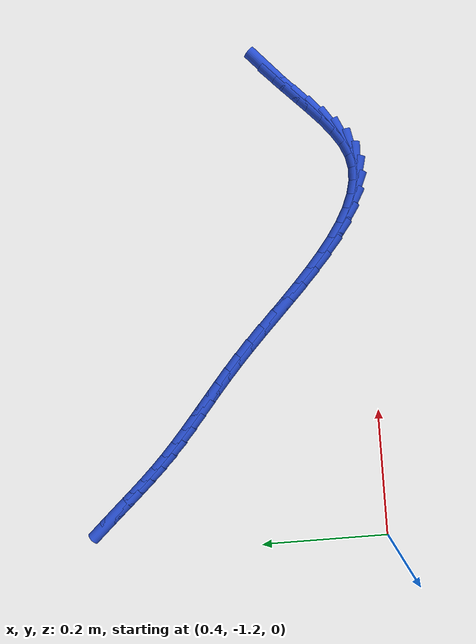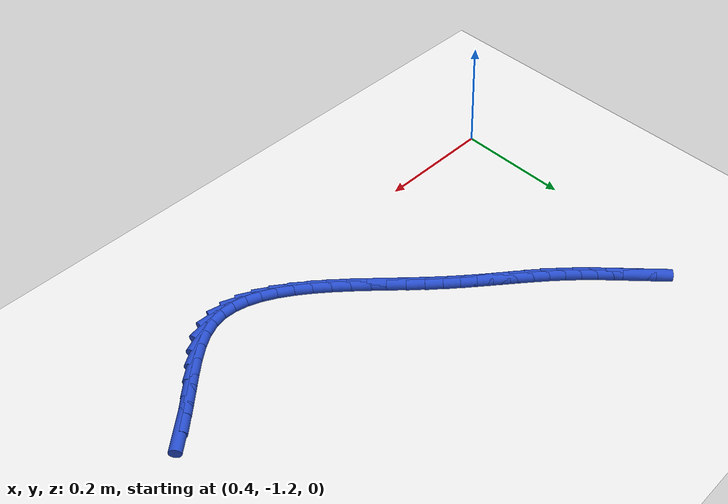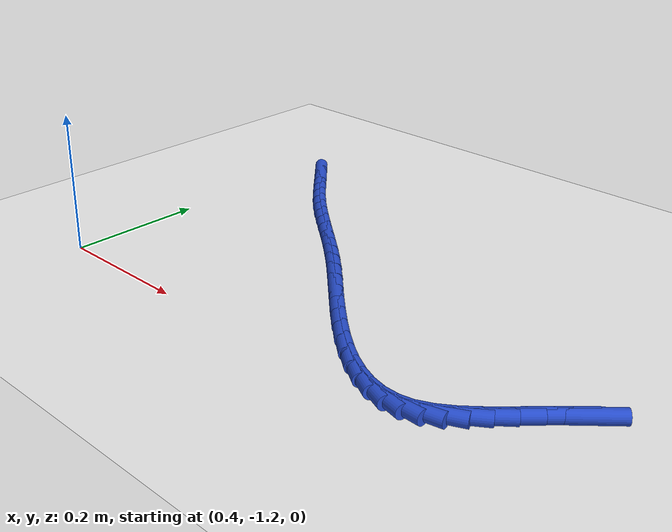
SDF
<sdf version="1.6">
 <world name="default">
  <model name="ground_plane">
   <static>1</static>
   <link name="link">
    <collision name="collision">
     <geometry><plane><normal>0 0 1</normal><size>100 100</size></plane></geometry>
     <surface><friction><ode><mu>100</mu><mu2>50</mu2></ode></friction></surface>
    </collision>
    <visual name="visual">
     <cast_shadows>0</cast_shadows>
     <geometry><plane><normal>0 0 1</normal><size>100 100</size></plane></geometry>
     <material>
      <script><uri>file://media/materials/scripts/gazebo.material</uri><name>Gazebo/WhiteGlow</name></script>
     </material>
    </visual>
   </link>
  </model>
  <model name="line">
   <link name="link_202">
    <pose>1.1506623947052153 -1.064427023692108 0.01 0 1.57 0.7445253968105598</pose>
    <collision name="collision">
     <geometry><cylinder><radius>0.01</radius><length>0.08</length></cylinder></geometry>
    </collision>
    <visual name="visual">
     <material>
      <script><name>Gazebo/Blue</name><uri>file://media/materials/scripts/gazebo.material</uri></script>
     </material>
     <geometry><cylinder><radius>0.01</radius><length>0.08</length></cylinder></geometry>
    </visual>
   </link>
   <link name="link_203">
    <pose>1.128656453459606 -1.0847037906573485 0.01 0 1.57 0.7819613909206391</pose>
    <collision name="collision">
     <geometry><cylinder><radius>0.01</radius><length>0.08</length></cylinder></geometry>
    </collision>
    <visual name="visual">
     <material>
      <script><name>Gazebo/Blue</name><uri>file://media/materials/scripts/gazebo.material</uri></script>
     </material>
     <geometry><cylinder><radius>0.01</radius><length>0.08</length></cylinder></geometry>
    </visual>
   </link>
   <link name="link_204">
    <pose>1.1075437234542118 -1.1056718978303268 0.01 0 1.57 0.789883306645363</pose>
    <collision name="collision">
     <geometry><cylinder><radius>0.01</radius><length>0.08</length></cylinder></geometry>
    </collision>
    <visual name="visual">
     <material>
      <script><name>Gazebo/Blue</name><uri>file://media/materials/scripts/gazebo.material</uri></script>
     </material>
     <geometry><cylinder><radius>0.01</radius><length>0.08</length></cylinder></geometry>
    </visual>
   </link>
   <link name="link_205">
    <pose>1.0870757352523346 -1.1263243181917353 0.01 0 1.57 0.7665611280134716</pose>
    <collision name="collision">
     <geometry><cylinder><radius>0.01</radius><length>0.08</length></cylinder></geometry>
    </collision>
    <visual name="visual">
     <material>
      <script><name>Gazebo/Blue</name><uri>file://media/materials/scripts/gazebo.material</uri></script>
     </material>
     <geometry><cylinder><radius>0.01</radius><length>0.08</length></cylinder></geometry>
    </visual>
   </link>
   <link name="link_206">
    <pose>1.0670039136568994 -1.1456538473499303 0.01 0 1.57 0.7063512324061247</pose>
    <collision name="collision">
     <geometry><cylinder><radius>0.01</radius><length>0.08</length></cylinder></geometry>
    </collision>
    <visual name="visual">
     <material>
      <script><name>Gazebo/Blue</name><uri>file://media/materials/scripts/gazebo.material</uri></script>
     </material>
     <geometry><cylinder><radius>0.01</radius><length>0.08</length></cylinder></geometry>
    </visual>
   </link>
   <link name="link_207">
    <pose>1.04707968347083 -1.1626532809132706 0.01 0 1.57 0.5987112760717187</pose>
    <collision name="collision">
     <geometry><cylinder><radius>0.01</radius><length>0.08</length></cylinder></geometry>
    </collision>
    <visual name="visual">
     <material>
      <script><name>Gazebo/Blue</name><uri>file://media/materials/scripts/gazebo.material</uri></script>
     </material>
     <geometry><cylinder><radius>0.01</radius><length>0.08</length></cylinder></geometry>
    </visual>
   </link>
   <link name="link_208">
    <pose>1.0270544694970507 -1.1763154144901122 0.01 0 1.57 0.42891796567351936</pose>
    <collision name="collision">
     <geometry><cylinder><radius>0.01</radius><length>0.08</length></cylinder></geometry>
    </collision>
    <visual name="visual">
     <material>
      <script><name>Gazebo/Blue</name><uri>file://media/materials/scripts/gazebo.material</uri></script>
     </material>
     <geometry><cylinder><radius>0.01</radius><length>0.08</length></cylinder></geometry>
    </visual>
   </link>
   <link name="link_209">
    <pose>1.006679696538485 -1.1856330436888136 0.01 0 1.57 0.1966426450295172</pose>
    <collision name="collision">
     <geometry><cylinder><radius>0.01</radius><length>0.08</length></cylinder></geometry>
    </collision>
    <visual name="visual">
     <material>
      <script><name>Gazebo/Blue</name><uri>file://media/materials/scripts/gazebo.material</uri></script>
     </material>
     <geometry><cylinder><radius>0.01</radius><length>0.08</length></cylinder></geometry>
    </visual>
   </link>
   <link name="link_210">
    <pose>0.9857505041051106 -1.1898024964246794 0.01 0 1.57 -0.036134222813552684</pose>
    <collision name="collision">
     <geometry><cylinder><radius>0.01</radius><length>0.08</length></cylinder></geometry>
    </collision>
    <visual name="visual">
     <material>
      <script><name>Gazebo/Blue</name><uri>file://media/materials/scripts/gazebo.material</uri></script>
     </material>
     <geometry><cylinder><radius>0.01</radius><length>0.08</length></cylinder></geometry>
    </visual>
   </link>
   <link name="link_211">
    <pose>0.9642781372296784 -1.1890262712718391 0.01 0 1.57 -0.23313015935884637</pose>
    <collision name="collision">
     <geometry><cylinder><radius>0.01</radius><length>0.08</length></cylinder></geometry>
    </collision>
    <visual name="visual">
     <material>
      <script><name>Gazebo/Blue</name><uri>file://media/materials/scripts/gazebo.material</uri></script>
     </material>
     <geometry><cylinder><radius>0.01</radius><length>0.08</length></cylinder></geometry>
    </visual>
   </link>
   <link name="link_212">
    <pose>0.9423405015001891 -1.1838172332121266 0.01 0 1.57 -0.38816335218469794</pose>
    <collision name="collision">
     <geometry><cylinder><radius>0.01</radius><length>0.08</length></cylinder></geometry>
    </collision>
    <visual name="visual">
     <material>
      <script><name>Gazebo/Blue</name><uri>file://media/materials/scripts/gazebo.material</uri></script>
     </material>
     <geometry><cylinder><radius>0.01</radius><length>0.08</length></cylinder></geometry>
    </visual>
   </link>
   <link name="link_213">
    <pose>0.9200155214869561 -1.1746883356075783 0.01 0 1.57 -0.5057855190597546</pose>
    <collision name="collision">
     <geometry><cylinder><radius>0.01</radius><length>0.08</length></cylinder></geometry>
    </collision>
    <visual name="visual">
     <material>
      <script><name>Gazebo/Blue</name><uri>file://media/materials/scripts/gazebo.material</uri></script>
     </material>
     <geometry><cylinder><radius>0.01</radius><length>0.08</length></cylinder></geometry>
    </visual>
   </link>
   <link name="link_214">
    <pose>0.8973811217602964 -1.162152531820233 0.01 0 1.57 -0.5936077709830178</pose>
    <collision name="collision">
     <geometry><cylinder><radius>0.01</radius><length>0.08</length></cylinder></geometry>
    </collision>
    <visual name="visual">
     <material>
      <script><name>Gazebo/Blue</name><uri>file://media/materials/scripts/gazebo.material</uri></script>
     </material>
     <geometry><cylinder><radius>0.01</radius><length>0.08</length></cylinder></geometry>
    </visual>
   </link>
   <link name="link_215">
    <pose>0.8745152268905252 -1.146722775212129 0.01 0 1.57 -0.6585135606297181</pose>
    <collision name="collision">
     <geometry><cylinder><radius>0.01</radius><length>0.08</length></cylinder></geometry>
    </collision>
    <visual name="visual">
     <material>
      <script><name>Gazebo/Blue</name><uri>file://media/materials/scripts/gazebo.material</uri></script>
     </material>
     <geometry><cylinder><radius>0.01</radius><length>0.08</length></cylinder></geometry>
    </visual>
   </link>
   <link name="link_216">
    <pose>0.8514957614479569 -1.1289120191453028 0.01 0 1.57 -0.7056983558320916</pose>
    <collision name="collision">
     <geometry><cylinder><radius>0.01</radius><length>0.08</length></cylinder></geometry>
    </collision>
    <visual name="visual">
     <material>
      <script><name>Gazebo/Blue</name><uri>file://media/materials/scripts/gazebo.material</uri></script>
     </material>
     <geometry><cylinder><radius>0.01</radius><length>0.08</length></cylinder></geometry>
    </visual>
   </link>
   <link name="link_217">
    <pose>0.8284006500029087 -1.1092332169817942 0.01 0 1.57 -0.7387723235924999</pose>
    <collision name="collision">
     <geometry><cylinder><radius>0.01</radius><length>0.08</length></cylinder></geometry>
    </collision>
    <visual name="visual">
     <material>
      <script><name>Gazebo/Blue</name><uri>file://media/materials/scripts/gazebo.material</uri></script>
     </material>
     <geometry><cylinder><radius>0.01</radius><length>0.08</length></cylinder></geometry>
    </visual>
   </link>
   <link name="link_218">
    <pose>0.8053078171256942 -1.0881993220836397 0.01 0 1.57 -0.7600832495053953</pose>
    <collision name="collision">
     <geometry><cylinder><radius>0.01</radius><length>0.08</length></cylinder></geometry>
    </collision>
    <visual name="visual">
     <material>
      <script><name>Gazebo/Blue</name><uri>file://media/materials/scripts/gazebo.material</uri></script>
     </material>
     <geometry><cylinder><radius>0.01</radius><length>0.08</length></cylinder></geometry>
    </visual>
   </link>
   <link name="link_219">
    <pose>0.7822951873866312 -1.066323287812878 0.01 0 1.57 -0.7709898007880279</pose>
    <collision name="collision">
     <geometry><cylinder><radius>0.01</radius><length>0.08</length></cylinder></geometry>
    </collision>
    <visual name="visual">
     <material>
      <script><name>Gazebo/Blue</name><uri>file://media/materials/scripts/gazebo.material</uri></script>
     </material>
     <geometry><cylinder><radius>0.01</radius><length>0.08</length></cylinder></geometry>
    </visual>
   </link>
   <link name="link_220">
    <pose>0.7594406853560329 -1.0441180675315465 0.01 0 1.57 -0.7720253467413957</pose>
    <collision name="collision">
     <geometry><cylinder><radius>0.01</radius><length>0.08</length></cylinder></geometry>
    </collision>
    <visual name="visual">
     <material>
      <script><name>Gazebo/Blue</name><uri>file://media/materials/scripts/gazebo.material</uri></script>
     </material>
     <geometry><cylinder><radius>0.01</radius><length>0.08</length></cylinder></geometry>
    </visual>
   </link>
   <link name="link_221">
    <pose>0.7368222356042168 -1.022096614601684 0.01 0 1.57 -0.7629458623032302</pose>
    <collision name="collision">
     <geometry><cylinder><radius>0.01</radius><length>0.08</length></cylinder></geometry>
    </collision>
    <visual name="visual">
     <material>
      <script><name>Gazebo/Blue</name><uri>file://media/materials/scripts/gazebo.material</uri></script>
     </material>
     <geometry><cylinder><radius>0.01</radius><length>0.08</length></cylinder></geometry>
    </visual>
   </link>
   <link name="link_222">
    <pose>0.7145177627014966 -1.0007718823853273 0.01 0 1.57 -0.7431001903617784</pose>
    <collision name="collision">
     <geometry><cylinder><radius>0.01</radius><length>0.08</length></cylinder></geometry>
    </collision>
    <visual name="visual">
     <material>
      <script><name>Gazebo/Blue</name><uri>file://media/materials/scripts/gazebo.material</uri></script>
     </material>
     <geometry><cylinder><radius>0.01</radius><length>0.08</length></cylinder></geometry>
    </visual>
   </link>
   <link name="link_223">
    <pose>0.6926032269571044 -0.9806370127279197 0.01 0 1.57 -0.7201481736488953</pose>
    <collision name="collision">
     <geometry><cylinder><radius>0.01</radius><length>0.08</length></cylinder></geometry>
    </collision>
    <visual name="visual">
     <material>
      <script><name>Gazebo/Blue</name><uri>file://media/materials/scripts/gazebo.material</uri></script>
     </material>
     <geometry><cylinder><radius>0.01</radius><length>0.08</length></cylinder></geometry>
    </visual>
   </link>
   <link name="link_224">
    <pose>0.6711148792632969 -0.9617846387139637 0.01 0 1.57 -0.703002037113014</pose>
    <collision name="collision">
     <geometry><cylinder><radius>0.01</radius><length>0.08</length></cylinder></geometry>
    </collision>
    <visual name="visual">
     <material>
      <script><name>Gazebo/Blue</name><uri>file://media/materials/scripts/gazebo.material</uri></script>
     </material>
     <geometry><cylinder><radius>0.01</radius><length>0.08</length></cylinder></geometry>
    </visual>
   </link>
   <link name="link_225">
    <pose>0.6500520806984919 -0.9439353231544672 0.01 0 1.57 -0.6930316968365402</pose>
    <collision name="collision">
     <geometry><cylinder><radius>0.01</radius><length>0.08</length></cylinder></geometry>
    </collision>
    <visual name="visual">
     <material>
      <script><name>Gazebo/Blue</name><uri>file://media/materials/scripts/gazebo.material</uri></script>
     </material>
     <geometry><cylinder><radius>0.01</radius><length>0.08</length></cylinder></geometry>
    </visual>
   </link>
   <link name="link_226">
    <pose>0.6294127929597958 -0.926795514715308 0.01 0 1.57 -0.6910981509693586</pose>
    <collision name="collision">
     <geometry><cylinder><radius>0.01</radius><length>0.08</length></cylinder></geometry>
    </collision>
    <visual name="visual">
     <material>
      <script><name>Gazebo/Blue</name><uri>file://media/materials/scripts/gazebo.material</uri></script>
     </material>
     <geometry><cylinder><radius>0.01</radius><length>0.08</length></cylinder></geometry>
    </visual>
   </link>
   <link name="link_227">
    <pose>0.6091949777443153 -0.9100716620623635 0.01 0 1.57 -0.6977947175611436</pose>
    <collision name="collision">
     <geometry><cylinder><radius>0.01</radius><length>0.08</length></cylinder></geometry>
    </collision>
    <visual name="visual">
     <material>
      <script><name>Gazebo/Blue</name><uri>file://media/materials/scripts/gazebo.material</uri></script>
     </material>
     <geometry><cylinder><radius>0.01</radius><length>0.08</length></cylinder></geometry>
    </visual>
   </link>
   <link name="link_228">
    <pose>0.5893965967491588 -0.8934702138615127 0.01 0 1.57 -0.7133754679154084</pose>
    <collision name="collision">
     <geometry><cylinder><radius>0.01</radius><length>0.08</length></cylinder></geometry>
    </collision>
    <visual name="visual">
     <material>
      <script><name>Gazebo/Blue</name><uri>file://media/materials/scripts/gazebo.material</uri></script>
     </material>
     <geometry><cylinder><radius>0.01</radius><length>0.08</length></cylinder></geometry>
    </visual>
   </link>
   <link name="link_229">
    <pose>0.5700156116714322 -0.8766976187786322 0.01 0 1.57 -0.7376941966911635</pose>
    <collision name="collision">
     <geometry><cylinder><radius>0.01</radius><length>0.08</length></cylinder></geometry>
    </collision>
    <visual name="visual">
     <material>
      <script><name>Gazebo/Blue</name><uri>file://media/materials/scripts/gazebo.material</uri></script>
     </material>
     <geometry><cylinder><radius>0.01</radius><length>0.08</length></cylinder></geometry>
    </visual>
   </link>
   <link name="link_230">
    <pose>0.5510499842082444 -0.8594603254796013 0.01 0 1.57 -0.769432477015731</pose>
    <collision name="collision">
     <geometry><cylinder><radius>0.01</radius><length>0.08</length></cylinder></geometry>
    </collision>
    <visual name="visual">
     <material>
      <script><name>Gazebo/Blue</name><uri>file://media/materials/scripts/gazebo.material</uri></script>
     </material>
     <geometry><cylinder><radius>0.01</radius><length>0.08</length></cylinder></geometry>
    </visual>
   </link>
   <link name="link_231">
    <pose>0.5324919271317771 -0.8414855890905205 0.01 0 1.57 -0.7985410044900678</pose>
    <collision name="collision">
     <geometry><cylinder><radius>0.01</radius><length>0.08</length></cylinder></geometry>
    </collision>
    <visual name="visual">
     <material>
      <script><name>Gazebo/Blue</name><uri>file://media/materials/scripts/gazebo.material</uri></script>
     </material>
     <geometry><cylinder><radius>0.01</radius><length>0.08</length></cylinder></geometry>
    </visual>
   </link>
   <link name="link_232">
    <pose>0.5142598315228704 -0.8227678395754052 0.01 0 1.57 -0.8186714840406792</pose>
    <collision name="collision">
     <geometry><cylinder><radius>0.01</radius><length>0.08</length></cylinder></geometry>
    </collision>
    <visual name="visual">
     <material>
      <script><name>Gazebo/Blue</name><uri>file://media/materials/scripts/gazebo.material</uri></script>
     </material>
     <geometry><cylinder><radius>0.01</radius><length>0.08</length></cylinder></geometry>
    </visual>
   </link>
   <link name="link_233">
    <pose>0.4962209173413921 -0.8034867049843792 0.01 0 1.57 -0.8300444057267047</pose>
    <collision name="collision">
     <geometry><cylinder><radius>0.01</radius><length>0.08</length></cylinder></geometry>
    </collision>
    <visual name="visual">
     <material>
      <script><name>Gazebo/Blue</name><uri>file://media/materials/scripts/gazebo.material</uri></script>
     </material>
     <geometry><cylinder><radius>0.01</radius><length>0.08</length></cylinder></geometry>
    </visual>
   </link>
   <link name="link_234">
    <pose>0.4782413773301945 -0.7838255310626701 0.01 0 1.57 -0.8329435977501191</pose>
    <collision name="collision">
     <geometry><cylinder><radius>0.01</radius><length>0.08</length></cylinder></geometry>
    </collision>
    <visual name="visual">
     <material>
      <script><name>Gazebo/Blue</name><uri>file://media/materials/scripts/gazebo.material</uri></script>
     </material>
     <geometry><cylinder><radius>0.01</radius><length>0.08</length></cylinder></geometry>
    </visual>
   </link>
   <link name="link_235">
    <pose>0.4601874042321289 -0.7639676635555037 0.01 0 1.57 -0.8275671505990576</pose>
    <collision name="collision">
     <geometry><cylinder><radius>0.01</radius><length>0.08</length></cylinder></geometry>
    </collision>
    <visual name="visual">
     <material>
      <script><name>Gazebo/Blue</name><uri>file://media/materials/scripts/gazebo.material</uri></script>
     </material>
     <geometry><cylinder><radius>0.01</radius><length>0.08</length></cylinder></geometry>
    </visual>
   </link>
  </model>
 </world>
</sdf>
